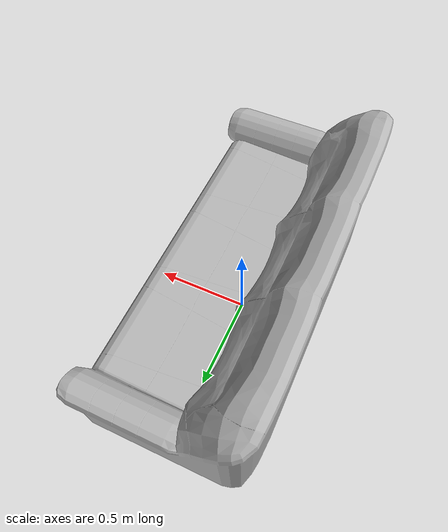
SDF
<?xml version='1.0'?>
<sdf version='1.4'>
  <model name='692'>
    <pose>0 0 0 0 0 0</pose>
    <static>true</static>
    <link name='link'>
      <collision name='collision'>
        <pose>0 0 0 0 0 0</pose>
        <geometry>
          <box>
            <size>0.900053 1.88 2</size>
          </box>
        </geometry>
      </collision>
      <visual name='visual'>
        <pose>0 0 0 0 0 0</pose>
        <geometry>
          <mesh><uri>model://692/692.dae</uri></mesh>
        </geometry>
      </visual>
    </link>
  </model>
</sdf>
